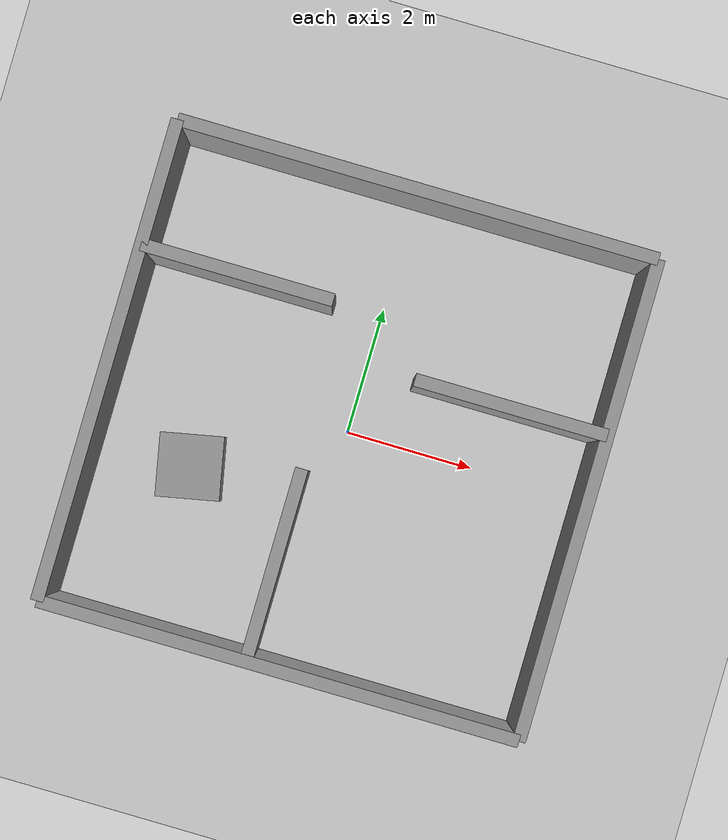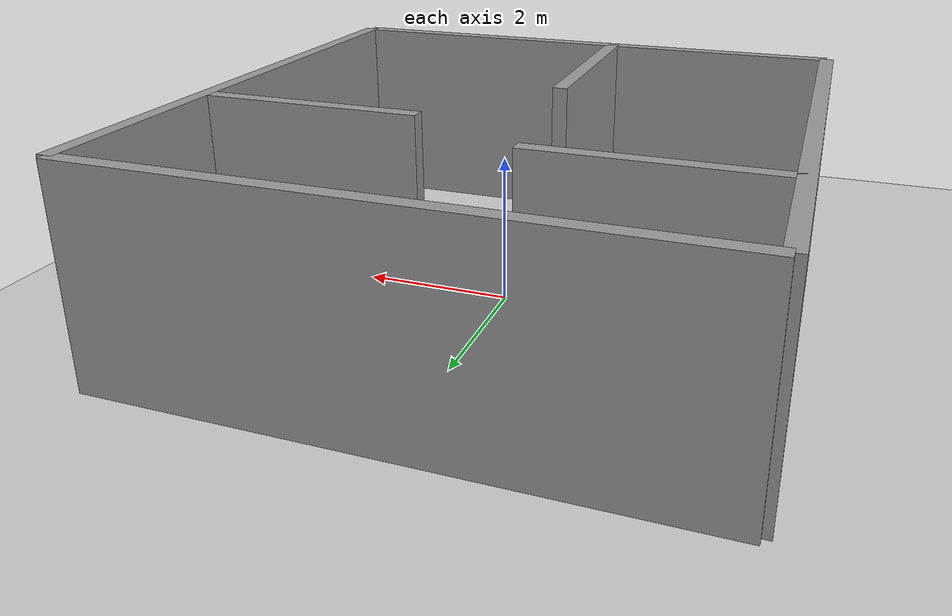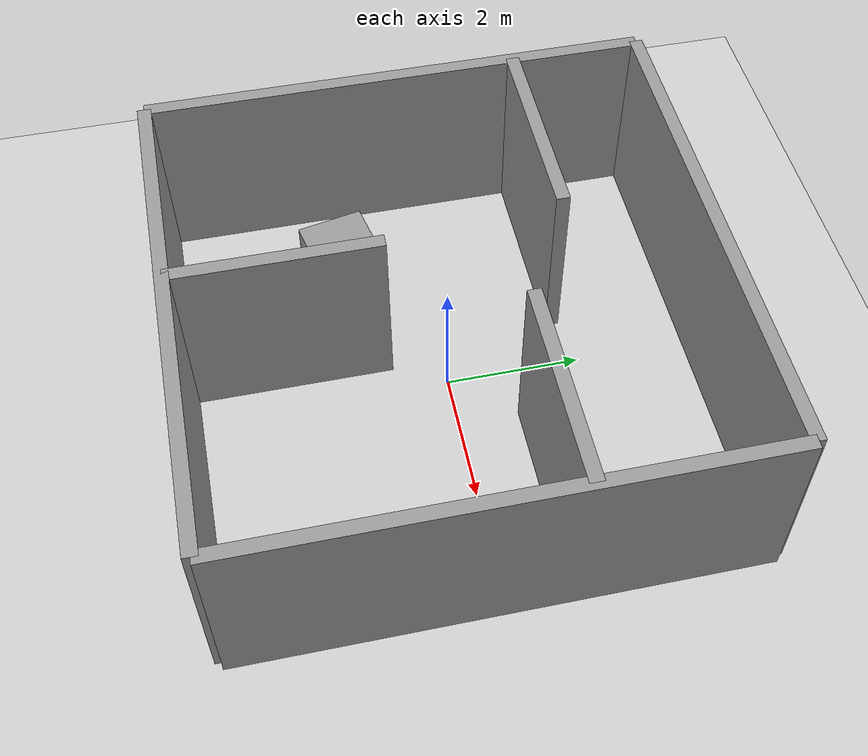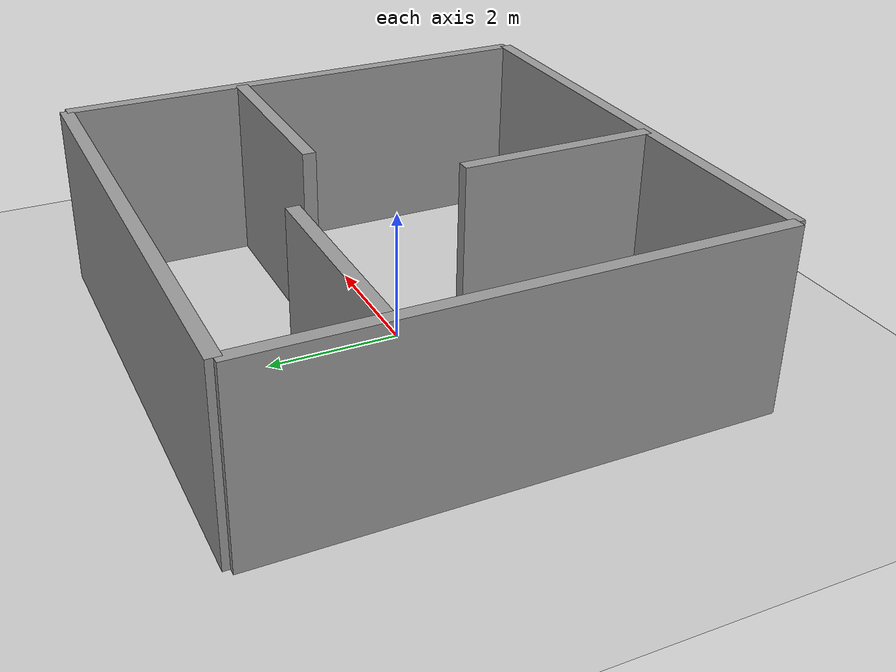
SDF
<sdf version="1.6">
 <world name="default">
  <light name="sun" type="directional">
   <pose>0 0 10 0 -0 0</pose>
   <diffuse>0.8 0.8 0.8 1</diffuse>
   <specular>0.1 0.1 0.1 1</specular>
   <attenuation>
    <range>1000</range>
    <constant>0.9</constant>
    <linear>0.01</linear>
    <quadratic>0.001</quadratic>
   </attenuation>
   <direction>-0.5 0.5 -1</direction>
  </light>
  <model name="ground_plane">
   <static>1</static>
   <link name="link">
    <collision name="collision">
     <geometry><plane><normal>0 0 1</normal><size>100 100</size></plane></geometry>
     <surface><friction><ode><mu>100</mu><mu2>50</mu2></ode></friction></surface>
    </collision>
    <visual name="visual">
     <cast_shadows>0</cast_shadows>
     <geometry><plane><normal>0 0 1</normal><size>100 100</size></plane></geometry>
     <material>
      <script><uri>file://media/materials/scripts/gazebo.material</uri><name>Gazebo/Grey</name></script>
     </material>
    </visual>
   </link>
  </model>
  <gravity>0 0 -9.8</gravity>
  <magnetic_field>6e-06 2.3e-05 -4.2e-05</magnetic_field>
  <atmosphere type="adiabatic"/>
  <physics name="default_physics" default="0" type="ode">
   <max_step_size>0.001</max_step_size>
   <real_time_factor>1</real_time_factor>
   <real_time_update_rate>1000</real_time_update_rate>
  </physics>
  <scene><ambient>0.4 0.4 0.4 1</ambient><background>0.7 0.7 0.7 1</background><shadows>1</shadows></scene>
  <spherical_coordinates>
   <surface_model>EARTH_WGS84</surface_model>
   <latitude_deg>0</latitude_deg>
   <longitude_deg>0</longitude_deg>
   <elevation>0</elevation>
   <heading_deg>0</heading_deg>
  </spherical_coordinates>
  <model name="grey_wall">
   <static>1</static>
   <link name="link">
    <pose>0 0 1.4 0 -0 0</pose>
    <collision name="collision"><geometry><box><size>7.5 0.2 2.8</size></box></geometry></collision>
    <visual name="visual">
     <cast_shadows>0</cast_shadows>
     <geometry><box><size>7.5 0.2 2.8</size></box></geometry>
     <material>
      <script>
       <uri>model://grey_wall/materials/scripts</uri>
       <uri>model://grey_wall/materials/textures</uri>
       <name>vrc/grey_wall</name>
      </script>
     </material>
    </visual>
   </link>
   <pose>0 3.75 0 0 -0 0</pose>
  </model>
  <model name="grey_wall_0">
   <static>1</static>
   <link name="link">
    <pose>0 0 1.4 0 -0 0</pose>
    <collision name="collision"><geometry><box><size>7.5 0.2 2.8</size></box></geometry></collision>
    <visual name="visual">
     <cast_shadows>0</cast_shadows>
     <geometry><box><size>7.5 0.2 2.8</size></box></geometry>
     <material>
      <script>
       <uri>model://grey_wall/materials/scripts</uri>
       <uri>model://grey_wall/materials/textures</uri>
       <name>vrc/grey_wall</name>
      </script>
     </material>
    </visual>
   </link>
   <pose>0 -3.75 0 0 -0 0</pose>
  </model>
  <model name="grey_wall_1">
   <static>1</static>
   <link name="link">
    <pose>0 0 1.4 0 -0 0</pose>
    <collision name="collision"><geometry><box><size>7.5 0.2 2.8</size></box></geometry></collision>
    <visual name="visual">
     <cast_shadows>0</cast_shadows>
     <geometry><box><size>7.5 0.2 2.8</size></box></geometry>
     <material>
      <script>
       <uri>model://grey_wall/materials/scripts</uri>
       <uri>model://grey_wall/materials/textures</uri>
       <name>vrc/grey_wall</name>
      </script>
     </material>
    </visual>
   </link>
   <pose>-3.75 0 0 0 -0 1.5708</pose>
  </model>
  <model name="grey_wall_2">
   <static>1</static>
   <link name="link">
    <pose>0 0 1.4 0 -0 0</pose>
    <collision name="collision"><geometry><box><size>7.5 0.2 2.8</size></box></geometry></collision>
    <visual name="visual">
     <cast_shadows>0</cast_shadows>
     <geometry><box><size>7.5 0.2 2.8</size></box></geometry>
     <material>
      <script>
       <uri>model://grey_wall/materials/scripts</uri>
       <uri>model://grey_wall/materials/textures</uri>
       <name>vrc/grey_wall</name>
      </script>
     </material>
    </visual>
   </link>
   <pose>3.75 0 0 0 0 -1.5708</pose>
  </model>
  <model name="grey_wall_5">
   <static>1</static>
   <link name="link">
    <pose>0 0 1.4 0 -0 0</pose>
    <collision name="collision"><geometry><box><size>3 0.2 2.8</size></box></geometry></collision>
    <visual name="visual">
     <cast_shadows>0</cast_shadows>
     <geometry><box><size>3 0.2 2.8</size></box></geometry>
     <material>
      <script>
       <uri>model://grey_wall/materials/scripts</uri>
       <uri>model://grey_wall/materials/textures</uri>
       <name>vrc/grey_wall</name>
      </script>
     </material>
    </visual>
   </link>
   <pose>-0.5 -2.25 0 0 -0 1.5708</pose>
  </model>
  <model name="unit_box_0">
   <pose>-2.2 -1.2 0.499999 2e-06 -0 0.2</pose>
   <link name="link">
    <inertial>
     <mass>1</mass>
     <inertia>
      <ixx>0.166667</ixx>
      <ixy>0</ixy>
      <ixz>0</ixz>
      <iyy>0.166667</iyy>
      <iyz>0</iyz>
      <izz>0.166667</izz>
     </inertia>
    </inertial>
    <collision name="collision"><geometry><box><size>1 1 1</size></box></geometry></collision>
    <visual name="visual">
     <geometry><box><size>1 1 1</size></box></geometry>
     <material>
      <script><name>Gazebo/Grey</name><uri>file://media/materials/scripts/gazebo.material</uri></script>
     </material>
    </visual>
   </link>
  </model>
  <model name="grey_wall_5_clone">
   <static>1</static>
   <link name="link">
    <pose>0 0 1.4 0 -0 0</pose>
    <collision name="collision"><geometry><box><size>3 0.2 2.8</size></box></geometry></collision>
    <visual name="visual">
     <cast_shadows>0</cast_shadows>
     <geometry><box><size>3 0.2 2.8</size></box></geometry>
     <material>
      <script>
       <uri>model://grey_wall/materials/scripts</uri>
       <uri>model://grey_wall/materials/textures</uri>
       <name>vrc/grey_wall</name>
      </script>
     </material>
    </visual>
   </link>
   <pose>-2.25 1.8 0 0 -0 0</pose>
  </model>
  <model name="grey_wall_5_clone_0">
   <static>1</static>
   <link name="link">
    <pose>0 0 1.4 0 -0 0</pose>
    <collision name="collision"><geometry><box><size>3 0.2 2.8</size></box></geometry></collision>
    <visual name="visual">
     <cast_shadows>0</cast_shadows>
     <geometry><box><size>3 0.2 2.8</size></box></geometry>
     <material>
      <script>
       <uri>model://grey_wall/materials/scripts</uri>
       <uri>model://grey_wall/materials/textures</uri>
       <name>vrc/grey_wall</name>
      </script>
     </material>
    </visual>
   </link>
   <pose>2.25 1 0 0 -0 0</pose>
  </model>
 </world>
</sdf>
